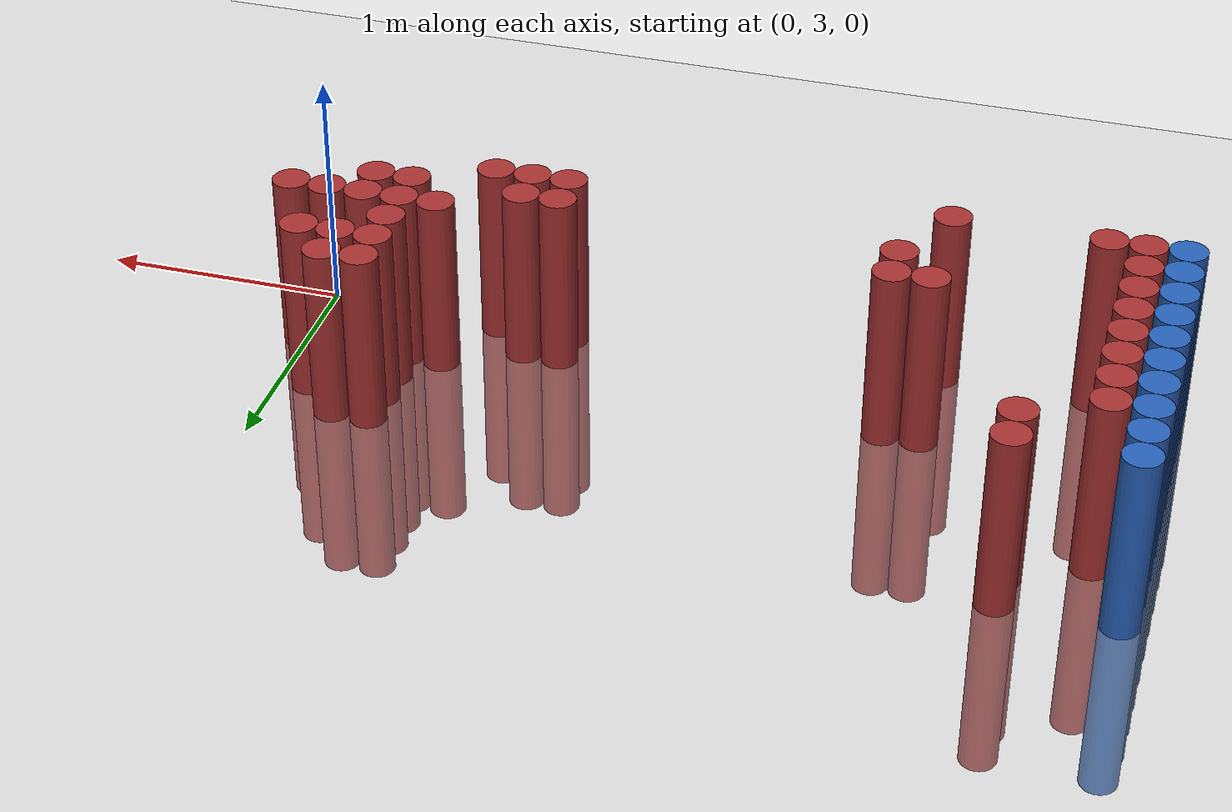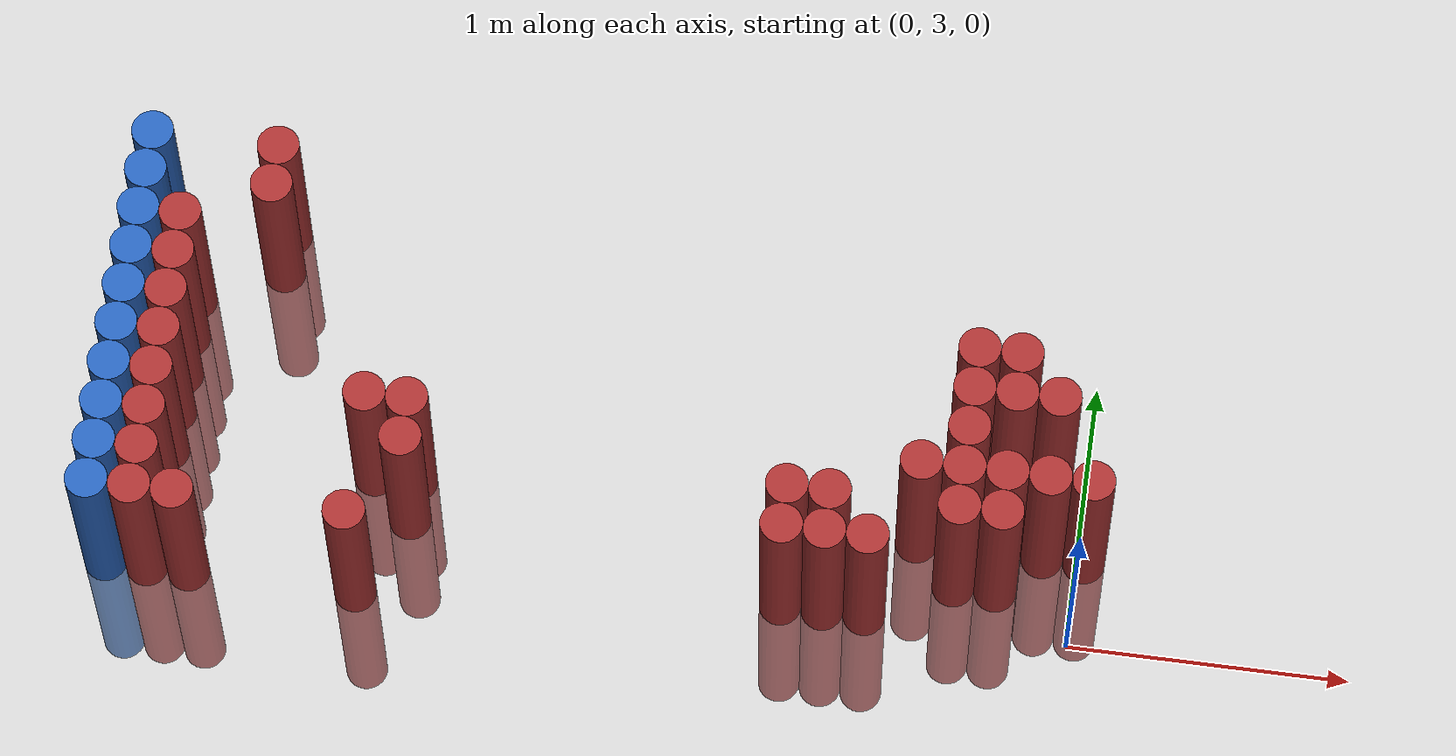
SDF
<sdf version="1.6">
 <world name="default">
  <model name="ground_plane">
   <static>1</static>
   <link name="link">
    <collision name="collision">
     <geometry><plane><normal>0 0 1</normal><size>100 100</size></plane></geometry>
     <surface><friction><ode><mu>100</mu><mu2>50</mu2></ode></friction></surface>
    </collision>
    <visual name="visual">
     <cast_shadows>0</cast_shadows>
     <geometry><plane><normal>0 0 1</normal><size>100 100</size></plane></geometry>
     <material>
      <script><uri>file://media/materials/scripts/gazebo.material</uri><name>Gazebo/Grey</name></script>
     </material>
    </visual>
   </link>
  </model>
  <model name="unit_cylinder_153">
   <static>1</static>
   <pose>-3.425000 2.875000 0.000000 0.000000 0.000000 0.000000</pose>
   <link name="link">
    <inertial>
     <mass>1</mass>
     <inertia><ixx>0.145833</ixx><ixy>0</ixy><ixz>0</ixz><iyy>0.145833</iyy><iyz>0</iyz><izz>0.125</izz></inertia>
    </inertial>
    <collision name="collision">
     <geometry><cylinder><radius>0.075000</radius><length>1.5</length></cylinder></geometry>
    </collision>
    <visual name="visual">
     <geometry><cylinder><radius>0.075000</radius><length>1.5</length></cylinder></geometry>
     <material>
      <ambient>0.152000 0.379000 0.720000 1</ambient>
      <diffuse>0.152000 0.379000 0.720000 1</diffuse>
     </material>
     <material>
      <script><name>Gazebo/Grey</name><uri>file://media/materials/scripts/gazebo.material</uri></script>
     </material>
    </visual>
   </link>
  </model>
  <model name="unit_cylinder_155">
   <static>1</static>
   <pose>-3.425000 3.025000 0.000000 0.000000 0.000000 0.000000</pose>
   <link name="link">
    <inertial>
     <mass>1</mass>
     <inertia><ixx>0.145833</ixx><ixy>0</ixy><ixz>0</ixz><iyy>0.145833</iyy><iyz>0</iyz><izz>0.125</izz></inertia>
    </inertial>
    <collision name="collision">
     <geometry><cylinder><radius>0.075000</radius><length>1.5</length></cylinder></geometry>
    </collision>
    <visual name="visual">
     <geometry><cylinder><radius>0.075000</radius><length>1.5</length></cylinder></geometry>
     <material>
      <ambient>0.152000 0.379000 0.720000 1</ambient>
      <diffuse>0.152000 0.379000 0.720000 1</diffuse>
     </material>
     <material>
      <script><name>Gazebo/Grey</name><uri>file://media/materials/scripts/gazebo.material</uri></script>
     </material>
    </visual>
   </link>
  </model>
  <model name="unit_cylinder_157">
   <static>1</static>
   <pose>-3.425000 3.175000 0.000000 0.000000 0.000000 0.000000</pose>
   <link name="link">
    <inertial>
     <mass>1</mass>
     <inertia><ixx>0.145833</ixx><ixy>0</ixy><ixz>0</ixz><iyy>0.145833</iyy><iyz>0</iyz><izz>0.125</izz></inertia>
    </inertial>
    <collision name="collision">
     <geometry><cylinder><radius>0.075000</radius><length>1.5</length></cylinder></geometry>
    </collision>
    <visual name="visual">
     <geometry><cylinder><radius>0.075000</radius><length>1.5</length></cylinder></geometry>
     <material>
      <ambient>0.152000 0.379000 0.720000 1</ambient>
      <diffuse>0.152000 0.379000 0.720000 1</diffuse>
     </material>
     <material>
      <script><name>Gazebo/Grey</name><uri>file://media/materials/scripts/gazebo.material</uri></script>
     </material>
    </visual>
   </link>
  </model>
  <model name="unit_cylinder_159">
   <static>1</static>
   <pose>-3.425000 3.325000 0.000000 0.000000 0.000000 0.000000</pose>
   <link name="link">
    <inertial>
     <mass>1</mass>
     <inertia><ixx>0.145833</ixx><ixy>0</ixy><ixz>0</ixz><iyy>0.145833</iyy><iyz>0</iyz><izz>0.125</izz></inertia>
    </inertial>
    <collision name="collision">
     <geometry><cylinder><radius>0.075000</radius><length>1.5</length></cylinder></geometry>
    </collision>
    <visual name="visual">
     <geometry><cylinder><radius>0.075000</radius><length>1.5</length></cylinder></geometry>
     <material>
      <ambient>0.152000 0.379000 0.720000 1</ambient>
      <diffuse>0.152000 0.379000 0.720000 1</diffuse>
     </material>
     <material>
      <script><name>Gazebo/Grey</name><uri>file://media/materials/scripts/gazebo.material</uri></script>
     </material>
    </visual>
   </link>
  </model>
  <model name="unit_cylinder_161">
   <static>1</static>
   <pose>-3.425000 3.475000 0.000000 0.000000 0.000000 0.000000</pose>
   <link name="link">
    <inertial>
     <mass>1</mass>
     <inertia><ixx>0.145833</ixx><ixy>0</ixy><ixz>0</ixz><iyy>0.145833</iyy><iyz>0</iyz><izz>0.125</izz></inertia>
    </inertial>
    <collision name="collision">
     <geometry><cylinder><radius>0.075000</radius><length>1.5</length></cylinder></geometry>
    </collision>
    <visual name="visual">
     <geometry><cylinder><radius>0.075000</radius><length>1.5</length></cylinder></geometry>
     <material>
      <ambient>0.152000 0.379000 0.720000 1</ambient>
      <diffuse>0.152000 0.379000 0.720000 1</diffuse>
     </material>
     <material>
      <script><name>Gazebo/Grey</name><uri>file://media/materials/scripts/gazebo.material</uri></script>
     </material>
    </visual>
   </link>
  </model>
  <model name="unit_cylinder_163">
   <static>1</static>
   <pose>-3.425000 3.625000 0.000000 0.000000 0.000000 0.000000</pose>
   <link name="link">
    <inertial>
     <mass>1</mass>
     <inertia><ixx>0.145833</ixx><ixy>0</ixy><ixz>0</ixz><iyy>0.145833</iyy><iyz>0</iyz><izz>0.125</izz></inertia>
    </inertial>
    <collision name="collision">
     <geometry><cylinder><radius>0.075000</radius><length>1.5</length></cylinder></geometry>
    </collision>
    <visual name="visual">
     <geometry><cylinder><radius>0.075000</radius><length>1.5</length></cylinder></geometry>
     <material>
      <ambient>0.152000 0.379000 0.720000 1</ambient>
      <diffuse>0.152000 0.379000 0.720000 1</diffuse>
     </material>
     <material>
      <script><name>Gazebo/Grey</name><uri>file://media/materials/scripts/gazebo.material</uri></script>
     </material>
    </visual>
   </link>
  </model>
  <model name="unit_cylinder_165">
   <static>1</static>
   <pose>-3.425000 3.775000 0.000000 0.000000 0.000000 0.000000</pose>
   <link name="link">
    <inertial>
     <mass>1</mass>
     <inertia><ixx>0.145833</ixx><ixy>0</ixy><ixz>0</ixz><iyy>0.145833</iyy><iyz>0</iyz><izz>0.125</izz></inertia>
    </inertial>
    <collision name="collision">
     <geometry><cylinder><radius>0.075000</radius><length>1.5</length></cylinder></geometry>
    </collision>
    <visual name="visual">
     <geometry><cylinder><radius>0.075000</radius><length>1.5</length></cylinder></geometry>
     <material>
      <ambient>0.152000 0.379000 0.720000 1</ambient>
      <diffuse>0.152000 0.379000 0.720000 1</diffuse>
     </material>
     <material>
      <script><name>Gazebo/Grey</name><uri>file://media/materials/scripts/gazebo.material</uri></script>
     </material>
    </visual>
   </link>
  </model>
  <model name="unit_cylinder_167">
   <static>1</static>
   <pose>-3.425000 3.925000 0.000000 0.000000 0.000000 0.000000</pose>
   <link name="link">
    <inertial>
     <mass>1</mass>
     <inertia><ixx>0.145833</ixx><ixy>0</ixy><ixz>0</ixz><iyy>0.145833</iyy><iyz>0</iyz><izz>0.125</izz></inertia>
    </inertial>
    <collision name="collision">
     <geometry><cylinder><radius>0.075000</radius><length>1.5</length></cylinder></geometry>
    </collision>
    <visual name="visual">
     <geometry><cylinder><radius>0.075000</radius><length>1.5</length></cylinder></geometry>
     <material>
      <ambient>0.152000 0.379000 0.720000 1</ambient>
      <diffuse>0.152000 0.379000 0.720000 1</diffuse>
     </material>
     <material>
      <script><name>Gazebo/Grey</name><uri>file://media/materials/scripts/gazebo.material</uri></script>
     </material>
    </visual>
   </link>
  </model>
  <model name="unit_cylinder_169">
   <static>1</static>
   <pose>-3.425000 4.075000 0.000000 0.000000 0.000000 0.000000</pose>
   <link name="link">
    <inertial>
     <mass>1</mass>
     <inertia><ixx>0.145833</ixx><ixy>0</ixy><ixz>0</ixz><iyy>0.145833</iyy><iyz>0</iyz><izz>0.125</izz></inertia>
    </inertial>
    <collision name="collision">
     <geometry><cylinder><radius>0.075000</radius><length>1.5</length></cylinder></geometry>
    </collision>
    <visual name="visual">
     <geometry><cylinder><radius>0.075000</radius><length>1.5</length></cylinder></geometry>
     <material>
      <ambient>0.152000 0.379000 0.720000 1</ambient>
      <diffuse>0.152000 0.379000 0.720000 1</diffuse>
     </material>
     <material>
      <script><name>Gazebo/Grey</name><uri>file://media/materials/scripts/gazebo.material</uri></script>
     </material>
    </visual>
   </link>
  </model>
  <model name="unit_cylinder_171">
   <static>1</static>
   <pose>-3.425000 4.225000 0.000000 0.000000 0.000000 0.000000</pose>
   <link name="link">
    <inertial>
     <mass>1</mass>
     <inertia><ixx>0.145833</ixx><ixy>0</ixy><ixz>0</ixz><iyy>0.145833</iyy><iyz>0</iyz><izz>0.125</izz></inertia>
    </inertial>
    <collision name="collision">
     <geometry><cylinder><radius>0.075000</radius><length>1.5</length></cylinder></geometry>
    </collision>
    <visual name="visual">
     <geometry><cylinder><radius>0.075000</radius><length>1.5</length></cylinder></geometry>
     <material>
      <ambient>0.152000 0.379000 0.720000 1</ambient>
      <diffuse>0.152000 0.379000 0.720000 1</diffuse>
     </material>
     <material>
      <script><name>Gazebo/Grey</name><uri>file://media/materials/scripts/gazebo.material</uri></script>
     </material>
    </visual>
   </link>
  </model>
  <model name="unit_cylinder_240">
   <static>1</static>
   <pose>-3.425000 2.875000 0.000000 0.000000 0.000000 0.000000</pose>
   <link name="link">
    <inertial>
     <mass>1</mass>
     <inertia><ixx>0.145833</ixx><ixy>0</ixy><ixz>0</ixz><iyy>0.145833</iyy><iyz>0</iyz><izz>0.125</izz></inertia>
    </inertial>
    <collision name="collision">
     <geometry><cylinder><radius>0.075000</radius><length>1.5</length></cylinder></geometry>
    </collision>
    <visual name="visual">
     <geometry><cylinder><radius>0.075000</radius><length>1.5</length></cylinder></geometry>
     <material>
      <ambient>0.152000 0.379000 0.720000 1</ambient>
      <diffuse>0.152000 0.379000 0.720000 1</diffuse>
     </material>
     <material>
      <script><name>Gazebo/Grey</name><uri>file://media/materials/scripts/gazebo.material</uri></script>
     </material>
    </visual>
   </link>
  </model>
  <model name="unit_cylinder_241">
   <static>1</static>
   <pose>-3.425000 3.025000 0.000000 0.000000 0.000000 0.000000</pose>
   <link name="link">
    <inertial>
     <mass>1</mass>
     <inertia><ixx>0.145833</ixx><ixy>0</ixy><ixz>0</ixz><iyy>0.145833</iyy><iyz>0</iyz><izz>0.125</izz></inertia>
    </inertial>
    <collision name="collision">
     <geometry><cylinder><radius>0.075000</radius><length>1.5</length></cylinder></geometry>
    </collision>
    <visual name="visual">
     <geometry><cylinder><radius>0.075000</radius><length>1.5</length></cylinder></geometry>
     <material>
      <ambient>0.152000 0.379000 0.720000 1</ambient>
      <diffuse>0.152000 0.379000 0.720000 1</diffuse>
     </material>
     <material>
      <script><name>Gazebo/Grey</name><uri>file://media/materials/scripts/gazebo.material</uri></script>
     </material>
    </visual>
   </link>
  </model>
  <model name="unit_cylinder_242">
   <static>1</static>
   <pose>-3.425000 3.175000 0.000000 0.000000 0.000000 0.000000</pose>
   <link name="link">
    <inertial>
     <mass>1</mass>
     <inertia><ixx>0.145833</ixx><ixy>0</ixy><ixz>0</ixz><iyy>0.145833</iyy><iyz>0</iyz><izz>0.125</izz></inertia>
    </inertial>
    <collision name="collision">
     <geometry><cylinder><radius>0.075000</radius><length>1.5</length></cylinder></geometry>
    </collision>
    <visual name="visual">
     <geometry><cylinder><radius>0.075000</radius><length>1.5</length></cylinder></geometry>
     <material>
      <ambient>0.152000 0.379000 0.720000 1</ambient>
      <diffuse>0.152000 0.379000 0.720000 1</diffuse>
     </material>
     <material>
      <script><name>Gazebo/Grey</name><uri>file://media/materials/scripts/gazebo.material</uri></script>
     </material>
    </visual>
   </link>
  </model>
  <model name="unit_cylinder_243">
   <static>1</static>
   <pose>-3.425000 3.325000 0.000000 0.000000 0.000000 0.000000</pose>
   <link name="link">
    <inertial>
     <mass>1</mass>
     <inertia><ixx>0.145833</ixx><ixy>0</ixy><ixz>0</ixz><iyy>0.145833</iyy><iyz>0</iyz><izz>0.125</izz></inertia>
    </inertial>
    <collision name="collision">
     <geometry><cylinder><radius>0.075000</radius><length>1.5</length></cylinder></geometry>
    </collision>
    <visual name="visual">
     <geometry><cylinder><radius>0.075000</radius><length>1.5</length></cylinder></geometry>
     <material>
      <ambient>0.152000 0.379000 0.720000 1</ambient>
      <diffuse>0.152000 0.379000 0.720000 1</diffuse>
     </material>
     <material>
      <script><name>Gazebo/Grey</name><uri>file://media/materials/scripts/gazebo.material</uri></script>
     </material>
    </visual>
   </link>
  </model>
  <model name="unit_cylinder_244">
   <static>1</static>
   <pose>-3.425000 3.475000 0.000000 0.000000 0.000000 0.000000</pose>
   <link name="link">
    <inertial>
     <mass>1</mass>
     <inertia><ixx>0.145833</ixx><ixy>0</ixy><ixz>0</ixz><iyy>0.145833</iyy><iyz>0</iyz><izz>0.125</izz></inertia>
    </inertial>
    <collision name="collision">
     <geometry><cylinder><radius>0.075000</radius><length>1.5</length></cylinder></geometry>
    </collision>
    <visual name="visual">
     <geometry><cylinder><radius>0.075000</radius><length>1.5</length></cylinder></geometry>
     <material>
      <ambient>0.152000 0.379000 0.720000 1</ambient>
      <diffuse>0.152000 0.379000 0.720000 1</diffuse>
     </material>
     <material>
      <script><name>Gazebo/Grey</name><uri>file://media/materials/scripts/gazebo.material</uri></script>
     </material>
    </visual>
   </link>
  </model>
  <model name="unit_cylinder_245">
   <static>1</static>
   <pose>-3.425000 3.625000 0.000000 0.000000 0.000000 0.000000</pose>
   <link name="link">
    <inertial>
     <mass>1</mass>
     <inertia><ixx>0.145833</ixx><ixy>0</ixy><ixz>0</ixz><iyy>0.145833</iyy><iyz>0</iyz><izz>0.125</izz></inertia>
    </inertial>
    <collision name="collision">
     <geometry><cylinder><radius>0.075000</radius><length>1.5</length></cylinder></geometry>
    </collision>
    <visual name="visual">
     <geometry><cylinder><radius>0.075000</radius><length>1.5</length></cylinder></geometry>
     <material>
      <ambient>0.152000 0.379000 0.720000 1</ambient>
      <diffuse>0.152000 0.379000 0.720000 1</diffuse>
     </material>
     <material>
      <script><name>Gazebo/Grey</name><uri>file://media/materials/scripts/gazebo.material</uri></script>
     </material>
    </visual>
   </link>
  </model>
  <model name="unit_cylinder_246">
   <static>1</static>
   <pose>-3.425000 3.775000 0.000000 0.000000 0.000000 0.000000</pose>
   <link name="link">
    <inertial>
     <mass>1</mass>
     <inertia><ixx>0.145833</ixx><ixy>0</ixy><ixz>0</ixz><iyy>0.145833</iyy><iyz>0</iyz><izz>0.125</izz></inertia>
    </inertial>
    <collision name="collision">
     <geometry><cylinder><radius>0.075000</radius><length>1.5</length></cylinder></geometry>
    </collision>
    <visual name="visual">
     <geometry><cylinder><radius>0.075000</radius><length>1.5</length></cylinder></geometry>
     <material>
      <ambient>0.152000 0.379000 0.720000 1</ambient>
      <diffuse>0.152000 0.379000 0.720000 1</diffuse>
     </material>
     <material>
      <script><name>Gazebo/Grey</name><uri>file://media/materials/scripts/gazebo.material</uri></script>
     </material>
    </visual>
   </link>
  </model>
  <model name="unit_cylinder_247">
   <static>1</static>
   <pose>-3.425000 3.925000 0.000000 0.000000 0.000000 0.000000</pose>
   <link name="link">
    <inertial>
     <mass>1</mass>
     <inertia><ixx>0.145833</ixx><ixy>0</ixy><ixz>0</ixz><iyy>0.145833</iyy><iyz>0</iyz><izz>0.125</izz></inertia>
    </inertial>
    <collision name="collision">
     <geometry><cylinder><radius>0.075000</radius><length>1.5</length></cylinder></geometry>
    </collision>
    <visual name="visual">
     <geometry><cylinder><radius>0.075000</radius><length>1.5</length></cylinder></geometry>
     <material>
      <ambient>0.152000 0.379000 0.720000 1</ambient>
      <diffuse>0.152000 0.379000 0.720000 1</diffuse>
     </material>
     <material>
      <script><name>Gazebo/Grey</name><uri>file://media/materials/scripts/gazebo.material</uri></script>
     </material>
    </visual>
   </link>
  </model>
  <model name="unit_cylinder_248">
   <static>1</static>
   <pose>-3.425000 4.075000 0.000000 0.000000 0.000000 0.000000</pose>
   <link name="link">
    <inertial>
     <mass>1</mass>
     <inertia><ixx>0.145833</ixx><ixy>0</ixy><ixz>0</ixz><iyy>0.145833</iyy><iyz>0</iyz><izz>0.125</izz></inertia>
    </inertial>
    <collision name="collision">
     <geometry><cylinder><radius>0.075000</radius><length>1.5</length></cylinder></geometry>
    </collision>
    <visual name="visual">
     <geometry><cylinder><radius>0.075000</radius><length>1.5</length></cylinder></geometry>
     <material>
      <ambient>0.152000 0.379000 0.720000 1</ambient>
      <diffuse>0.152000 0.379000 0.720000 1</diffuse>
     </material>
     <material>
      <script><name>Gazebo/Grey</name><uri>file://media/materials/scripts/gazebo.material</uri></script>
     </material>
    </visual>
   </link>
  </model>
  <model name="unit_cylinder_249">
   <static>1</static>
   <pose>-3.425000 4.225000 0.000000 0.000000 0.000000 0.000000</pose>
   <link name="link">
    <inertial>
     <mass>1</mass>
     <inertia><ixx>0.145833</ixx><ixy>0</ixy><ixz>0</ixz><iyy>0.145833</iyy><iyz>0</iyz><izz>0.125</izz></inertia>
    </inertial>
    <collision name="collision">
     <geometry><cylinder><radius>0.075000</radius><length>1.5</length></cylinder></geometry>
    </collision>
    <visual name="visual">
     <geometry><cylinder><radius>0.075000</radius><length>1.5</length></cylinder></geometry>
     <material>
      <ambient>0.152000 0.379000 0.720000 1</ambient>
      <diffuse>0.152000 0.379000 0.720000 1</diffuse>
     </material>
     <material>
      <script><name>Gazebo/Grey</name><uri>file://media/materials/scripts/gazebo.material</uri></script>
     </material>
    </visual>
   </link>
  </model>
  <model name="unit_cylinder_272">
   <static>1</static>
   <pose>-3.275000 2.875000 0.000000 0.000000 0.000000 0.000000</pose>
   <link name="link">
    <inertial>
     <mass>1</mass>
     <inertia><ixx>0.145833</ixx><ixy>0</ixy><ixz>0</ixz><iyy>0.145833</iyy><iyz>0</iyz><izz>0.125</izz></inertia>
    </inertial>
    <collision name="collision">
     <geometry><cylinder><radius>0.075000</radius><length>1.5</length></cylinder></geometry>
    </collision>
    <visual name="visual">
     <geometry><cylinder><radius>0.075000</radius><length>1.5</length></cylinder></geometry>
     <material>
      <ambient>0.648000 0.192000 0.192000 1</ambient>
      <diffuse>0.648000 0.192000 0.192000 1</diffuse>
     </material>
     <material>
      <script><name>Gazebo/Grey</name><uri>file://media/materials/scripts/gazebo.material</uri></script>
     </material>
    </visual>
   </link>
  </model>
  <model name="unit_cylinder_273">
   <static>1</static>
   <pose>-3.275000 3.025000 0.000000 0.000000 0.000000 0.000000</pose>
   <link name="link">
    <inertial>
     <mass>1</mass>
     <inertia><ixx>0.145833</ixx><ixy>0</ixy><ixz>0</ixz><iyy>0.145833</iyy><iyz>0</iyz><izz>0.125</izz></inertia>
    </inertial>
    <collision name="collision">
     <geometry><cylinder><radius>0.075000</radius><length>1.5</length></cylinder></geometry>
    </collision>
    <visual name="visual">
     <geometry><cylinder><radius>0.075000</radius><length>1.5</length></cylinder></geometry>
     <material>
      <ambient>0.648000 0.192000 0.192000 1</ambient>
      <diffuse>0.648000 0.192000 0.192000 1</diffuse>
     </material>
     <material>
      <script><name>Gazebo/Grey</name><uri>file://media/materials/scripts/gazebo.material</uri></script>
     </material>
    </visual>
   </link>
  </model>
  <model name="unit_cylinder_274">
   <static>1</static>
   <pose>-3.275000 3.175000 0.000000 0.000000 0.000000 0.000000</pose>
   <link name="link">
    <inertial>
     <mass>1</mass>
     <inertia><ixx>0.145833</ixx><ixy>0</ixy><ixz>0</ixz><iyy>0.145833</iyy><iyz>0</iyz><izz>0.125</izz></inertia>
    </inertial>
    <collision name="collision">
     <geometry><cylinder><radius>0.075000</radius><length>1.5</length></cylinder></geometry>
    </collision>
    <visual name="visual">
     <geometry><cylinder><radius>0.075000</radius><length>1.5</length></cylinder></geometry>
     <material>
      <ambient>0.648000 0.192000 0.192000 1</ambient>
      <diffuse>0.648000 0.192000 0.192000 1</diffuse>
     </material>
     <material>
      <script><name>Gazebo/Grey</name><uri>file://media/materials/scripts/gazebo.material</uri></script>
     </material>
    </visual>
   </link>
  </model>
  <model name="unit_cylinder_275">
   <static>1</static>
   <pose>-3.275000 3.325000 0.000000 0.000000 0.000000 0.000000</pose>
   <link name="link">
    <inertial>
     <mass>1</mass>
     <inertia><ixx>0.145833</ixx><ixy>0</ixy><ixz>0</ixz><iyy>0.145833</iyy><iyz>0</iyz><izz>0.125</izz></inertia>
    </inertial>
    <collision name="collision">
     <geometry><cylinder><radius>0.075000</radius><length>1.5</length></cylinder></geometry>
    </collision>
    <visual name="visual">
     <geometry><cylinder><radius>0.075000</radius><length>1.5</length></cylinder></geometry>
     <material>
      <ambient>0.648000 0.192000 0.192000 1</ambient>
      <diffuse>0.648000 0.192000 0.192000 1</diffuse>
     </material>
     <material>
      <script><name>Gazebo/Grey</name><uri>file://media/materials/scripts/gazebo.material</uri></script>
     </material>
    </visual>
   </link>
  </model>
  <model name="unit_cylinder_276">
   <static>1</static>
   <pose>-3.275000 3.475000 0.000000 0.000000 0.000000 0.000000</pose>
   <link name="link">
    <inertial>
     <mass>1</mass>
     <inertia><ixx>0.145833</ixx><ixy>0</ixy><ixz>0</ixz><iyy>0.145833</iyy><iyz>0</iyz><izz>0.125</izz></inertia>
    </inertial>
    <collision name="collision">
     <geometry><cylinder><radius>0.075000</radius><length>1.5</length></cylinder></geometry>
    </collision>
    <visual name="visual">
     <geometry><cylinder><radius>0.075000</radius><length>1.5</length></cylinder></geometry>
     <material>
      <ambient>0.648000 0.192000 0.192000 1</ambient>
      <diffuse>0.648000 0.192000 0.192000 1</diffuse>
     </material>
     <material>
      <script><name>Gazebo/Grey</name><uri>file://media/materials/scripts/gazebo.material</uri></script>
     </material>
    </visual>
   </link>
  </model>
  <model name="unit_cylinder_277">
   <static>1</static>
   <pose>-3.275000 3.625000 0.000000 0.000000 0.000000 0.000000</pose>
   <link name="link">
    <inertial>
     <mass>1</mass>
     <inertia><ixx>0.145833</ixx><ixy>0</ixy><ixz>0</ixz><iyy>0.145833</iyy><iyz>0</iyz><izz>0.125</izz></inertia>
    </inertial>
    <collision name="collision">
     <geometry><cylinder><radius>0.075000</radius><length>1.5</length></cylinder></geometry>
    </collision>
    <visual name="visual">
     <geometry><cylinder><radius>0.075000</radius><length>1.5</length></cylinder></geometry>
     <material>
      <ambient>0.648000 0.192000 0.192000 1</ambient>
      <diffuse>0.648000 0.192000 0.192000 1</diffuse>
     </material>
     <material>
      <script><name>Gazebo/Grey</name><uri>file://media/materials/scripts/gazebo.material</uri></script>
     </material>
    </visual>
   </link>
  </model>
  <model name="unit_cylinder_278">
   <static>1</static>
   <pose>-3.275000 3.775000 0.000000 0.000000 0.000000 0.000000</pose>
   <link name="link">
    <inertial>
     <mass>1</mass>
     <inertia><ixx>0.145833</ixx><ixy>0</ixy><ixz>0</ixz><iyy>0.145833</iyy><iyz>0</iyz><izz>0.125</izz></inertia>
    </inertial>
    <collision name="collision">
     <geometry><cylinder><radius>0.075000</radius><length>1.5</length></cylinder></geometry>
    </collision>
    <visual name="visual">
     <geometry><cylinder><radius>0.075000</radius><length>1.5</length></cylinder></geometry>
     <material>
      <ambient>0.648000 0.192000 0.192000 1</ambient>
      <diffuse>0.648000 0.192000 0.192000 1</diffuse>
     </material>
     <material>
      <script><name>Gazebo/Grey</name><uri>file://media/materials/scripts/gazebo.material</uri></script>
     </material>
    </visual>
   </link>
  </model>
  <model name="unit_cylinder_279">
   <static>1</static>
   <pose>-3.275000 3.925000 0.000000 0.000000 0.000000 0.000000</pose>
   <link name="link">
    <inertial>
     <mass>1</mass>
     <inertia><ixx>0.145833</ixx><ixy>0</ixy><ixz>0</ixz><iyy>0.145833</iyy><iyz>0</iyz><izz>0.125</izz></inertia>
    </inertial>
    <collision name="collision">
     <geometry><cylinder><radius>0.075000</radius><length>1.5</length></cylinder></geometry>
    </collision>
    <visual name="visual">
     <geometry><cylinder><radius>0.075000</radius><length>1.5</length></cylinder></geometry>
     <material>
      <ambient>0.648000 0.192000 0.192000 1</ambient>
      <diffuse>0.648000 0.192000 0.192000 1</diffuse>
     </material>
     <material>
      <script><name>Gazebo/Grey</name><uri>file://media/materials/scripts/gazebo.material</uri></script>
     </material>
    </visual>
   </link>
  </model>
  <model name="unit_cylinder_296">
   <static>1</static>
   <pose>-3.125000 2.875000 0.000000 0.000000 0.000000 0.000000</pose>
   <link name="link">
    <inertial>
     <mass>1</mass>
     <inertia><ixx>0.145833</ixx><ixy>0</ixy><ixz>0</ixz><iyy>0.145833</iyy><iyz>0</iyz><izz>0.125</izz></inertia>
    </inertial>
    <collision name="collision">
     <geometry><cylinder><radius>0.075000</radius><length>1.5</length></cylinder></geometry>
    </collision>
    <visual name="visual">
     <geometry><cylinder><radius>0.075000</radius><length>1.5</length></cylinder></geometry>
     <material>
      <ambient>0.648000 0.192000 0.192000 1</ambient>
      <diffuse>0.648000 0.192000 0.192000 1</diffuse>
     </material>
     <material>
      <script><name>Gazebo/Grey</name><uri>file://media/materials/scripts/gazebo.material</uri></script>
     </material>
    </visual>
   </link>
  </model>
  <model name="unit_cylinder_302">
   <static>1</static>
   <pose>-2.975000 4.075000 0.000000 0.000000 0.000000 0.000000</pose>
   <link name="link">
    <inertial>
     <mass>1</mass>
     <inertia><ixx>0.145833</ixx><ixy>0</ixy><ixz>0</ixz><iyy>0.145833</iyy><iyz>0</iyz><izz>0.125</izz></inertia>
    </inertial>
    <collision name="collision">
     <geometry><cylinder><radius>0.075000</radius><length>1.5</length></cylinder></geometry>
    </collision>
    <visual name="visual">
     <geometry><cylinder><radius>0.075000</radius><length>1.5</length></cylinder></geometry>
     <material>
      <ambient>0.648000 0.192000 0.192000 1</ambient>
      <diffuse>0.648000 0.192000 0.192000 1</diffuse>
     </material>
     <material>
      <script><name>Gazebo/Grey</name><uri>file://media/materials/scripts/gazebo.material</uri></script>
     </material>
    </visual>
   </link>
  </model>
  <model name="unit_cylinder_303">
   <static>1</static>
   <pose>-2.975000 4.225000 0.000000 0.000000 0.000000 0.000000</pose>
   <link name="link">
    <inertial>
     <mass>1</mass>
     <inertia><ixx>0.145833</ixx><ixy>0</ixy><ixz>0</ixz><iyy>0.145833</iyy><iyz>0</iyz><izz>0.125</izz></inertia>
    </inertial>
    <collision name="collision">
     <geometry><cylinder><radius>0.075000</radius><length>1.5</length></cylinder></geometry>
    </collision>
    <visual name="visual">
     <geometry><cylinder><radius>0.075000</radius><length>1.5</length></cylinder></geometry>
     <material>
      <ambient>0.648000 0.192000 0.192000 1</ambient>
      <diffuse>0.648000 0.192000 0.192000 1</diffuse>
     </material>
     <material>
      <script><name>Gazebo/Grey</name><uri>file://media/materials/scripts/gazebo.material</uri></script>
     </material>
    </visual>
   </link>
  </model>
  <model name="unit_cylinder_330">
   <static>1</static>
   <pose>-2.525000 2.875000 0.000000 0.000000 0.000000 0.000000</pose>
   <link name="link">
    <inertial>
     <mass>1</mass>
     <inertia><ixx>0.145833</ixx><ixy>0</ixy><ixz>0</ixz><iyy>0.145833</iyy><iyz>0</iyz><izz>0.125</izz></inertia>
    </inertial>
    <collision name="collision">
     <geometry><cylinder><radius>0.075000</radius><length>1.5</length></cylinder></geometry>
    </collision>
    <visual name="visual">
     <geometry><cylinder><radius>0.075000</radius><length>1.5</length></cylinder></geometry>
     <material>
      <ambient>0.648000 0.192000 0.192000 1</ambient>
      <diffuse>0.648000 0.192000 0.192000 1</diffuse>
     </material>
     <material>
      <script><name>Gazebo/Grey</name><uri>file://media/materials/scripts/gazebo.material</uri></script>
     </material>
    </visual>
   </link>
  </model>
  <model name="unit_cylinder_331">
   <static>1</static>
   <pose>-2.525000 3.325000 0.000000 0.000000 0.000000 0.000000</pose>
   <link name="link">
    <inertial>
     <mass>1</mass>
     <inertia><ixx>0.145833</ixx><ixy>0</ixy><ixz>0</ixz><iyy>0.145833</iyy><iyz>0</iyz><izz>0.125</izz></inertia>
    </inertial>
    <collision name="collision">
     <geometry><cylinder><radius>0.075000</radius><length>1.5</length></cylinder></geometry>
    </collision>
    <visual name="visual">
     <geometry><cylinder><radius>0.075000</radius><length>1.5</length></cylinder></geometry>
     <material>
      <ambient>0.648000 0.192000 0.192000 1</ambient>
      <diffuse>0.648000 0.192000 0.192000 1</diffuse>
     </material>
     <material>
      <script><name>Gazebo/Grey</name><uri>file://media/materials/scripts/gazebo.material</uri></script>
     </material>
    </visual>
   </link>
  </model>
  <model name="unit_cylinder_338">
   <static>1</static>
   <pose>-2.375000 3.175000 0.000000 0.000000 0.000000 0.000000</pose>
   <link name="link">
    <inertial>
     <mass>1</mass>
     <inertia><ixx>0.145833</ixx><ixy>0</ixy><ixz>0</ixz><iyy>0.145833</iyy><iyz>0</iyz><izz>0.125</izz></inertia>
    </inertial>
    <collision name="collision">
     <geometry><cylinder><radius>0.075000</radius><length>1.5</length></cylinder></geometry>
    </collision>
    <visual name="visual">
     <geometry><cylinder><radius>0.075000</radius><length>1.5</length></cylinder></geometry>
     <material>
      <ambient>0.648000 0.192000 0.192000 1</ambient>
      <diffuse>0.648000 0.192000 0.192000 1</diffuse>
     </material>
     <material>
      <script><name>Gazebo/Grey</name><uri>file://media/materials/scripts/gazebo.material</uri></script>
     </material>
    </visual>
   </link>
  </model>
  <model name="unit_cylinder_339">
   <static>1</static>
   <pose>-2.375000 3.325000 0.000000 0.000000 0.000000 0.000000</pose>
   <link name="link">
    <inertial>
     <mass>1</mass>
     <inertia><ixx>0.145833</ixx><ixy>0</ixy><ixz>0</ixz><iyy>0.145833</iyy><iyz>0</iyz><izz>0.125</izz></inertia>
    </inertial>
    <collision name="collision">
     <geometry><cylinder><radius>0.075000</radius><length>1.5</length></cylinder></geometry>
    </collision>
    <visual name="visual">
     <geometry><cylinder><radius>0.075000</radius><length>1.5</length></cylinder></geometry>
     <material>
      <ambient>0.648000 0.192000 0.192000 1</ambient>
      <diffuse>0.648000 0.192000 0.192000 1</diffuse>
     </material>
     <material>
      <script><name>Gazebo/Grey</name><uri>file://media/materials/scripts/gazebo.material</uri></script>
     </material>
    </visual>
   </link>
  </model>
  <model name="unit_cylinder_357">
   <static>1</static>
   <pose>-1.025000 3.025000 0.000000 0.000000 0.000000 0.000000</pose>
   <link name="link">
    <inertial>
     <mass>1</mass>
     <inertia><ixx>0.145833</ixx><ixy>0</ixy><ixz>0</ixz><iyy>0.145833</iyy><iyz>0</iyz><izz>0.125</izz></inertia>
    </inertial>
    <collision name="collision">
     <geometry><cylinder><radius>0.075000</radius><length>1.5</length></cylinder></geometry>
    </collision>
    <visual name="visual">
     <geometry><cylinder><radius>0.075000</radius><length>1.5</length></cylinder></geometry>
     <material>
      <ambient>0.648000 0.192000 0.192000 1</ambient>
      <diffuse>0.648000 0.192000 0.192000 1</diffuse>
     </material>
     <material>
      <script><name>Gazebo/Grey</name><uri>file://media/materials/scripts/gazebo.material</uri></script>
     </material>
    </visual>
   </link>
  </model>
  <model name="unit_cylinder_358">
   <static>1</static>
   <pose>-1.025000 3.175000 0.000000 0.000000 0.000000 0.000000</pose>
   <link name="link">
    <inertial>
     <mass>1</mass>
     <inertia><ixx>0.145833</ixx><ixy>0</ixy><ixz>0</ixz><iyy>0.145833</iyy><iyz>0</iyz><izz>0.125</izz></inertia>
    </inertial>
    <collision name="collision">
     <geometry><cylinder><radius>0.075000</radius><length>1.5</length></cylinder></geometry>
    </collision>
    <visual name="visual">
     <geometry><cylinder><radius>0.075000</radius><length>1.5</length></cylinder></geometry>
     <material>
      <ambient>0.648000 0.192000 0.192000 1</ambient>
      <diffuse>0.648000 0.192000 0.192000 1</diffuse>
     </material>
     <material>
      <script><name>Gazebo/Grey</name><uri>file://media/materials/scripts/gazebo.material</uri></script>
     </material>
    </visual>
   </link>
  </model>
  <model name="unit_cylinder_362">
   <static>1</static>
   <pose>-0.875000 3.025000 0.000000 0.000000 0.000000 0.000000</pose>
   <link name="link">
    <inertial>
     <mass>1</mass>
     <inertia><ixx>0.145833</ixx><ixy>0</ixy><ixz>0</ixz><iyy>0.145833</iyy><iyz>0</iyz><izz>0.125</izz></inertia>
    </inertial>
    <collision name="collision">
     <geometry><cylinder><radius>0.075000</radius><length>1.5</length></cylinder></geometry>
    </collision>
    <visual name="visual">
     <geometry><cylinder><radius>0.075000</radius><length>1.5</length></cylinder></geometry>
     <material>
      <ambient>0.648000 0.192000 0.192000 1</ambient>
      <diffuse>0.648000 0.192000 0.192000 1</diffuse>
     </material>
     <material>
      <script><name>Gazebo/Grey</name><uri>file://media/materials/scripts/gazebo.material</uri></script>
     </material>
    </visual>
   </link>
  </model>
  <model name="unit_cylinder_363">
   <static>1</static>
   <pose>-0.875000 3.175000 0.000000 0.000000 0.000000 0.000000</pose>
   <link name="link">
    <inertial>
     <mass>1</mass>
     <inertia><ixx>0.145833</ixx><ixy>0</ixy><ixz>0</ixz><iyy>0.145833</iyy><iyz>0</iyz><izz>0.125</izz></inertia>
    </inertial>
    <collision name="collision">
     <geometry><cylinder><radius>0.075000</radius><length>1.5</length></cylinder></geometry>
    </collision>
    <visual name="visual">
     <geometry><cylinder><radius>0.075000</radius><length>1.5</length></cylinder></geometry>
     <material>
      <ambient>0.648000 0.192000 0.192000 1</ambient>
      <diffuse>0.648000 0.192000 0.192000 1</diffuse>
     </material>
     <material>
      <script><name>Gazebo/Grey</name><uri>file://media/materials/scripts/gazebo.material</uri></script>
     </material>
    </visual>
   </link>
  </model>
  <model name="unit_cylinder_364">
   <static>1</static>
   <pose>-0.725000 3.025000 0.000000 0.000000 0.000000 0.000000</pose>
   <link name="link">
    <inertial>
     <mass>1</mass>
     <inertia><ixx>0.145833</ixx><ixy>0</ixy><ixz>0</ixz><iyy>0.145833</iyy><iyz>0</iyz><izz>0.125</izz></inertia>
    </inertial>
    <collision name="collision">
     <geometry><cylinder><radius>0.075000</radius><length>1.5</length></cylinder></geometry>
    </collision>
    <visual name="visual">
     <geometry><cylinder><radius>0.075000</radius><length>1.5</length></cylinder></geometry>
     <material>
      <ambient>0.648000 0.192000 0.192000 1</ambient>
      <diffuse>0.648000 0.192000 0.192000 1</diffuse>
     </material>
     <material>
      <script><name>Gazebo/Grey</name><uri>file://media/materials/scripts/gazebo.material</uri></script>
     </material>
    </visual>
   </link>
  </model>
  <model name="unit_cylinder_365">
   <static>1</static>
   <pose>-0.575000 3.325000 0.000000 0.000000 0.000000 0.000000</pose>
   <link name="link">
    <inertial>
     <mass>1</mass>
     <inertia><ixx>0.145833</ixx><ixy>0</ixy><ixz>0</ixz><iyy>0.145833</iyy><iyz>0</iyz><izz>0.125</izz></inertia>
    </inertial>
    <collision name="collision">
     <geometry><cylinder><radius>0.075000</radius><length>1.5</length></cylinder></geometry>
    </collision>
    <visual name="visual">
     <geometry><cylinder><radius>0.075000</radius><length>1.5</length></cylinder></geometry>
     <material>
      <ambient>0.648000 0.192000 0.192000 1</ambient>
      <diffuse>0.648000 0.192000 0.192000 1</diffuse>
     </material>
     <material>
      <script><name>Gazebo/Grey</name><uri>file://media/materials/scripts/gazebo.material</uri></script>
     </material>
    </visual>
   </link>
  </model>
  <model name="unit_cylinder_367">
   <static>1</static>
   <pose>-0.425000 3.175000 0.000000 0.000000 0.000000 0.000000</pose>
   <link name="link">
    <inertial>
     <mass>1</mass>
     <inertia><ixx>0.145833</ixx><ixy>0</ixy><ixz>0</ixz><iyy>0.145833</iyy><iyz>0</iyz><izz>0.125</izz></inertia>
    </inertial>
    <collision name="collision">
     <geometry><cylinder><radius>0.075000</radius><length>1.5</length></cylinder></geometry>
    </collision>
    <visual name="visual">
     <geometry><cylinder><radius>0.075000</radius><length>1.5</length></cylinder></geometry>
     <material>
      <ambient>0.648000 0.192000 0.192000 1</ambient>
      <diffuse>0.648000 0.192000 0.192000 1</diffuse>
     </material>
     <material>
      <script><name>Gazebo/Grey</name><uri>file://media/materials/scripts/gazebo.material</uri></script>
     </material>
    </visual>
   </link>
  </model>
  <model name="unit_cylinder_368">
   <static>1</static>
   <pose>-0.425000 3.325000 0.000000 0.000000 0.000000 0.000000</pose>
   <link name="link">
    <inertial>
     <mass>1</mass>
     <inertia><ixx>0.145833</ixx><ixy>0</ixy><ixz>0</ixz><iyy>0.145833</iyy><iyz>0</iyz><izz>0.125</izz></inertia>
    </inertial>
    <collision name="collision">
     <geometry><cylinder><radius>0.075000</radius><length>1.5</length></cylinder></geometry>
    </collision>
    <visual name="visual">
     <geometry><cylinder><radius>0.075000</radius><length>1.5</length></cylinder></geometry>
     <material>
      <ambient>0.648000 0.192000 0.192000 1</ambient>
      <diffuse>0.648000 0.192000 0.192000 1</diffuse>
     </material>
     <material>
      <script><name>Gazebo/Grey</name><uri>file://media/materials/scripts/gazebo.material</uri></script>
     </material>
    </visual>
   </link>
  </model>
  <model name="unit_cylinder_369">
   <static>1</static>
   <pose>-0.425000 3.475000 0.000000 0.000000 0.000000 0.000000</pose>
   <link name="link">
    <inertial>
     <mass>1</mass>
     <inertia><ixx>0.145833</ixx><ixy>0</ixy><ixz>0</ixz><iyy>0.145833</iyy><iyz>0</iyz><izz>0.125</izz></inertia>
    </inertial>
    <collision name="collision">
     <geometry><cylinder><radius>0.075000</radius><length>1.5</length></cylinder></geometry>
    </collision>
    <visual name="visual">
     <geometry><cylinder><radius>0.075000</radius><length>1.5</length></cylinder></geometry>
     <material>
      <ambient>0.648000 0.192000 0.192000 1</ambient>
      <diffuse>0.648000 0.192000 0.192000 1</diffuse>
     </material>
     <material>
      <script><name>Gazebo/Grey</name><uri>file://media/materials/scripts/gazebo.material</uri></script>
     </material>
    </visual>
   </link>
  </model>
  <model name="unit_cylinder_370">
   <static>1</static>
   <pose>-0.425000 3.625000 0.000000 0.000000 0.000000 0.000000</pose>
   <link name="link">
    <inertial>
     <mass>1</mass>
     <inertia><ixx>0.145833</ixx><ixy>0</ixy><ixz>0</ixz><iyy>0.145833</iyy><iyz>0</iyz><izz>0.125</izz></inertia>
    </inertial>
    <collision name="collision">
     <geometry><cylinder><radius>0.075000</radius><length>1.5</length></cylinder></geometry>
    </collision>
    <visual name="visual">
     <geometry><cylinder><radius>0.075000</radius><length>1.5</length></cylinder></geometry>
     <material>
      <ambient>0.648000 0.192000 0.192000 1</ambient>
      <diffuse>0.648000 0.192000 0.192000 1</diffuse>
     </material>
     <material>
      <script><name>Gazebo/Grey</name><uri>file://media/materials/scripts/gazebo.material</uri></script>
     </material>
    </visual>
   </link>
  </model>
  <model name="unit_cylinder_371">
   <static>1</static>
   <pose>-0.425000 3.775000 0.000000 0.000000 0.000000 0.000000</pose>
   <link name="link">
    <inertial>
     <mass>1</mass>
     <inertia><ixx>0.145833</ixx><ixy>0</ixy><ixz>0</ixz><iyy>0.145833</iyy><iyz>0</iyz><izz>0.125</izz></inertia>
    </inertial>
    <collision name="collision">
     <geometry><cylinder><radius>0.075000</radius><length>1.5</length></cylinder></geometry>
    </collision>
    <visual name="visual">
     <geometry><cylinder><radius>0.075000</radius><length>1.5</length></cylinder></geometry>
     <material>
      <ambient>0.648000 0.192000 0.192000 1</ambient>
      <diffuse>0.648000 0.192000 0.192000 1</diffuse>
     </material>
     <material>
      <script><name>Gazebo/Grey</name><uri>file://media/materials/scripts/gazebo.material</uri></script>
     </material>
    </visual>
   </link>
  </model>
  <model name="unit_cylinder_380">
   <static>1</static>
   <pose>-0.275000 3.175000 0.000000 0.000000 0.000000 0.000000</pose>
   <link name="link">
    <inertial>
     <mass>1</mass>
     <inertia><ixx>0.145833</ixx><ixy>0</ixy><ixz>0</ixz><iyy>0.145833</iyy><iyz>0</iyz><izz>0.125</izz></inertia>
    </inertial>
    <collision name="collision">
     <geometry><cylinder><radius>0.075000</radius><length>1.5</length></cylinder></geometry>
    </collision>
    <visual name="visual">
     <geometry><cylinder><radius>0.075000</radius><length>1.5</length></cylinder></geometry>
     <material>
      <ambient>0.648000 0.192000 0.192000 1</ambient>
      <diffuse>0.648000 0.192000 0.192000 1</diffuse>
     </material>
     <material>
      <script><name>Gazebo/Grey</name><uri>file://media/materials/scripts/gazebo.material</uri></script>
     </material>
    </visual>
   </link>
  </model>
  <model name="unit_cylinder_381">
   <static>1</static>
   <pose>-0.275000 3.325000 0.000000 0.000000 0.000000 0.000000</pose>
   <link name="link">
    <inertial>
     <mass>1</mass>
     <inertia><ixx>0.145833</ixx><ixy>0</ixy><ixz>0</ixz><iyy>0.145833</iyy><iyz>0</iyz><izz>0.125</izz></inertia>
    </inertial>
    <collision name="collision">
     <geometry><cylinder><radius>0.075000</radius><length>1.5</length></cylinder></geometry>
    </collision>
    <visual name="visual">
     <geometry><cylinder><radius>0.075000</radius><length>1.5</length></cylinder></geometry>
     <material>
      <ambient>0.648000 0.192000 0.192000 1</ambient>
      <diffuse>0.648000 0.192000 0.192000 1</diffuse>
     </material>
     <material>
      <script><name>Gazebo/Grey</name><uri>file://media/materials/scripts/gazebo.material</uri></script>
     </material>
    </visual>
   </link>
  </model>
  <model name="unit_cylinder_382">
   <static>1</static>
   <pose>-0.275000 3.625000 0.000000 0.000000 0.000000 0.000000</pose>
   <link name="link">
    <inertial>
     <mass>1</mass>
     <inertia><ixx>0.145833</ixx><ixy>0</ixy><ixz>0</ixz><iyy>0.145833</iyy><iyz>0</iyz><izz>0.125</izz></inertia>
    </inertial>
    <collision name="collision">
     <geometry><cylinder><radius>0.075000</radius><length>1.5</length></cylinder></geometry>
    </collision>
    <visual name="visual">
     <geometry><cylinder><radius>0.075000</radius><length>1.5</length></cylinder></geometry>
     <material>
      <ambient>0.648000 0.192000 0.192000 1</ambient>
      <diffuse>0.648000 0.192000 0.192000 1</diffuse>
     </material>
     <material>
      <script><name>Gazebo/Grey</name><uri>file://media/materials/scripts/gazebo.material</uri></script>
     </material>
    </visual>
   </link>
  </model>
  <model name="unit_cylinder_383">
   <static>1</static>
   <pose>-0.275000 3.775000 0.000000 0.000000 0.000000 0.000000</pose>
   <link name="link">
    <inertial>
     <mass>1</mass>
     <inertia><ixx>0.145833</ixx><ixy>0</ixy><ixz>0</ixz><iyy>0.145833</iyy><iyz>0</iyz><izz>0.125</izz></inertia>
    </inertial>
    <collision name="collision">
     <geometry><cylinder><radius>0.075000</radius><length>1.5</length></cylinder></geometry>
    </collision>
    <visual name="visual">
     <geometry><cylinder><radius>0.075000</radius><length>1.5</length></cylinder></geometry>
     <material>
      <ambient>0.648000 0.192000 0.192000 1</ambient>
      <diffuse>0.648000 0.192000 0.192000 1</diffuse>
     </material>
     <material>
      <script><name>Gazebo/Grey</name><uri>file://media/materials/scripts/gazebo.material</uri></script>
     </material>
    </visual>
   </link>
  </model>
  <model name="unit_cylinder_395">
   <static>1</static>
   <pose>-0.125000 3.325000 0.000000 0.000000 0.000000 0.000000</pose>
   <link name="link">
    <inertial>
     <mass>1</mass>
     <inertia><ixx>0.145833</ixx><ixy>0</ixy><ixz>0</ixz><iyy>0.145833</iyy><iyz>0</iyz><izz>0.125</izz></inertia>
    </inertial>
    <collision name="collision">
     <geometry><cylinder><radius>0.075000</radius><length>1.5</length></cylinder></geometry>
    </collision>
    <visual name="visual">
     <geometry><cylinder><radius>0.075000</radius><length>1.5</length></cylinder></geometry>
     <material>
      <ambient>0.648000 0.192000 0.192000 1</ambient>
      <diffuse>0.648000 0.192000 0.192000 1</diffuse>
     </material>
     <material>
      <script><name>Gazebo/Grey</name><uri>file://media/materials/scripts/gazebo.material</uri></script>
     </material>
    </visual>
   </link>
  </model>
  <model name="unit_cylinder_396">
   <static>1</static>
   <pose>-0.125000 3.625000 0.000000 0.000000 0.000000 0.000000</pose>
   <link name="link">
    <inertial>
     <mass>1</mass>
     <inertia><ixx>0.145833</ixx><ixy>0</ixy><ixz>0</ixz><iyy>0.145833</iyy><iyz>0</iyz><izz>0.125</izz></inertia>
    </inertial>
    <collision name="collision">
     <geometry><cylinder><radius>0.075000</radius><length>1.5</length></cylinder></geometry>
    </collision>
    <visual name="visual">
     <geometry><cylinder><radius>0.075000</radius><length>1.5</length></cylinder></geometry>
     <material>
      <ambient>0.648000 0.192000 0.192000 1</ambient>
      <diffuse>0.648000 0.192000 0.192000 1</diffuse>
     </material>
     <material>
      <script><name>Gazebo/Grey</name><uri>file://media/materials/scripts/gazebo.material</uri></script>
     </material>
    </visual>
   </link>
  </model>
  <model name="unit_cylinder_406">
   <static>1</static>
   <pose>0.025000 3.325000 0.000000 0.000000 0.000000 0.000000</pose>
   <link name="link">
    <inertial>
     <mass>1</mass>
     <inertia><ixx>0.145833</ixx><ixy>0</ixy><ixz>0</ixz><iyy>0.145833</iyy><iyz>0</iyz><izz>0.125</izz></inertia>
    </inertial>
    <collision name="collision">
     <geometry><cylinder><radius>0.075000</radius><length>1.5</length></cylinder></geometry>
    </collision>
    <visual name="visual">
     <geometry><cylinder><radius>0.075000</radius><length>1.5</length></cylinder></geometry>
     <material>
      <ambient>0.648000 0.192000 0.192000 1</ambient>
      <diffuse>0.648000 0.192000 0.192000 1</diffuse>
     </material>
     <material>
      <script><name>Gazebo/Grey</name><uri>file://media/materials/scripts/gazebo.material</uri></script>
     </material>
    </visual>
   </link>
  </model>
 </world>
</sdf>
